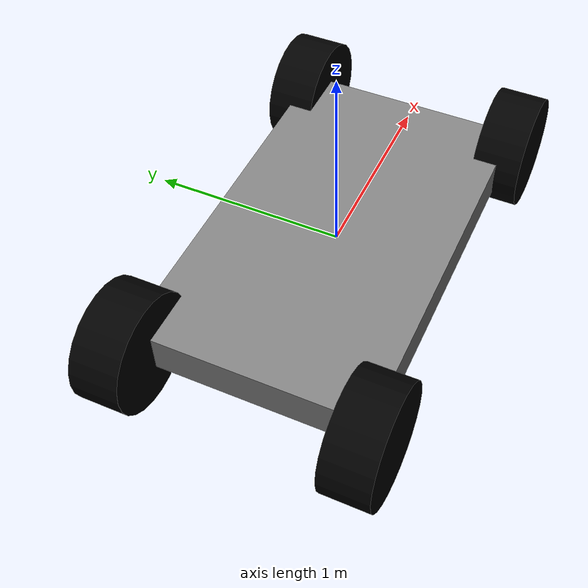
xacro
<?xml version="1.0"?>
<robot xmlns:xacro="http://www.ros.org/wiki/xacro" name="genesis_robot">

    <!-- Gazebo Plugin -->
    <gazebo>
        <plugin filename="ign_ros2_control-system" name="ign_ros2_control::IgnitionROS2ControlPlugin">
            <robot_param>robot_description</robot_param>
            <robot_param_node>robot_state_publisher</robot_param_node>
            <parameters>$(find genesis_robot_description)/config/genesis_robot.yaml</parameters>
        </plugin>
    </gazebo>

    <xacro:property name="M_PI" value="3.14159274"/>

    <!-- Materials -->
    <material name="gray">
        <color rgba="0.5 0.5 0.5 1.0"/>
    </material>
    <material name="white">
        <color rgba="1.0 1.0 1.0 1.0"/>
    </material>
    <material name="black">
        <color rgba="0 0 0 1.0"/>
    </material>

    <!-- Base Link -->
    <link name="base_footprint"/>

    <joint name="base_link_joint" type="fixed">
        <origin xyz="0 0 0"/>
        <parent link="base_footprint"/>
        <child link="base_link"/>
    </joint>

    <link name="base_link">
        <visual>
            <origin xyz="0 0 0" rpy="0 0 0"/>
            <geometry>
                <box size="2.0 1.2 0.2"/> <!-- Box of size 2.0m x 1.2m x 0.2m -->
            </geometry>
            <material name="gray"/>
        </visual>
        <collision>
            <origin xyz="0 0 0" rpy="0 0 0"/>
            <geometry>
                <box size="2.0 1.2 0.2"/> <!-- Box of size 2.0m x 1.2m x 0.2m -->
            </geometry>
        </collision>
        <inertial>
            <origin xyz="0 0 0.1"/>
            <mass value="10.0"/>
            <inertia ixx="1.0" ixy="0" ixz="0" iyy="1.0" iyz="0" izz="1.0" />
        </inertial>
    </link>

    <!-- Suspension Macro -->
    <xacro:macro name="steering_v0" params="prefix parent *joint_origin *joint_axis">
        <joint name="${prefix}_steering_joint" type="revolute">
            <xacro:insert_block name="joint_origin"/>
            <parent link="${parent}"/>
            <child link="${prefix}_steering_link"/>
            <limit effort="5" velocity="6.28" lower="-2.1" upper="2.1" />
            <xacro:insert_block name="joint_axis"/>
        </joint>

        <link name="${prefix}_steering_link">
            <visual>
                <origin xyz="0 0 0" rpy="0 0 0"/>
                <geometry>
                    <cylinder length="0.1" radius="0.05"/>
                </geometry>
                <material name="gray"/>
            </visual>
            <collision>
                <origin xyz="0 0 0" rpy="0 0 0"/>
                <geometry>
                    <cylinder length="0.1" radius="0.05"/>
                </geometry>
            </collision>
            <inertial>
                <origin xyz="0 0 -0.02"/>
                <mass value="0.15"/>
                <inertia ixx="0.00001" ixy="0" ixz="0" iyy="0.00001" iyz="0" izz="0.000004" />
            </inertial>
        </link>
    </xacro:macro>

    <!-- Wheel Macro -->
    <xacro:macro name="wheel_v0" params="prefix parent *joint_origin *joint_axis">
        <joint name="${prefix}_wheel_joint" type="continuous">
            <xacro:insert_block name="joint_origin"/>
            <parent link="${parent}"/>
            <child link="${prefix}_wheel_link"/>
            <limit effort="1.5" velocity="20"/>
            <xacro:insert_block name="joint_axis"/>
        </joint>

        <link name="${prefix}_wheel_link">
            <visual>
                <origin xyz="0 0 0" rpy="1.5708 0 0"/>
                <geometry>
                    <cylinder length="0.25" radius="0.3"/> <!-- Wheel of radius 0.3m -->
                </geometry>
                <material name="black"/>
            </visual>
            <collision>
                <origin xyz="0 0 0" rpy="1.5708 0 0"/>
                <geometry>
                    <cylinder length="0.25" radius="0.3"/> <!-- Wheel of radius 0.3m -->
                </geometry>
            </collision>
            <inertial>
                <origin xyz="0 0 0"/>
                <mass value="1.0"/>
                <inertia ixx="0.1" ixy="0" ixz="0" iyy="0.1" iyz="0" izz="0.1"/>
            </inertial>
        </link>
    </xacro:macro>

    <!-- Front Right Suspension -->
    <xacro:steering_v0 prefix="fr" parent="base_link">
        <origin xyz="1.0 -0.6 0"/>
        <axis xyz="0 0 1"/>
    </xacro:steering_v0>
    <xacro:wheel_v0 prefix="fr" parent="fr_steering_link">
        <origin xyz="0 0 0" rpy="0 0 0"/>
        <axis xyz="0 1 0"/>
    </xacro:wheel_v0>

    <!-- Front Left Suspension -->
    <xacro:steering_v0 prefix="fl" parent="base_link">
        <origin xyz="1.0 0.6 0"/>
        <axis xyz="0 0 1"/>
    </xacro:steering_v0>
    <xacro:wheel_v0 prefix="fl" parent="fl_steering_link">
        <origin xyz="0 0 0" rpy="0 0 0"/>
        <axis xyz="0 1 0"/>
    </xacro:wheel_v0>

    <!-- Rear Right Wheel -->
    <xacro:wheel_v0 prefix="rr" parent="base_link">
        <origin xyz="-1.0 -0.6 0" rpy="0 0 0"/>
        <axis xyz="0 1 0"/>
    </xacro:wheel_v0>

    <!-- Rear Left Wheel -->
    <xacro:wheel_v0 prefix="rl" parent="base_link">
        <origin xyz="-1.0 0.6 0" rpy="0 0 0"/>
        <axis xyz="0 1 0"/>
    </xacro:wheel_v0>

    <!-- ros2_control -->
    <ros2_control name="IgnitionSystem" type="system">
        <hardware>
            <plugin>ign_ros2_control/IgnitionSystem</plugin>
        </hardware>
        <joint name="fr_steering_joint">
            <command_interface name="position"/>
            <state_interface name="position"/>
            <state_interface name="velocity"/>
            <state_interface name="effort"/>
        </joint>
        <joint name="fl_steering_joint">
            <command_interface name="position"/>
            <state_interface name="position"/>
            <state_interface name="velocity"/>
            <state_interface name="effort"/>
        </joint>
        <joint name="rr_wheel_joint">
            <command_interface name="velocity"/>
            <state_interface name="position"/>
            <state_interface name="velocity"/>
            <state_interface name="effort"/>
        </joint>
        <joint name="rl_wheel_joint">
            <command_interface name="velocity"/>
            <state_interface name="position"/>
            <state_interface name="velocity"/>
            <state_interface name="effort"/>
        </joint>
    </ros2_control>

    <!-- Gazebo -->
    <gazebo reference="base_link">
        <selfCollide>false</selfCollide>
        <mu1 value="0.5" />
        <mu2 value="0.5" />
    </gazebo>

    <gazebo reference="fr_wheel_link">
        <selfCollide>false</selfCollide>
        <mu1 value="2.0"/>
        <mu2 value="2.0"/>
    </gazebo>

    <gazebo reference="fl_wheel_link">
        <selfCollide>false</selfCollide>
        <mu1 value="2.0"/>
        <mu2 value="2.0"/>
    </gazebo>

    <gazebo reference="rr_wheel_link">
        <selfCollide>false</selfCollide>
        <mu1 value="2.0"/>
        <mu2 value="2.0"/>
    </gazebo>

    <gazebo reference="rl_wheel_link">
        <selfCollide>false</selfCollide>
        <mu1 value="2.0"/>
        <mu2 value="2.0"/>
    </gazebo>

</robot>
